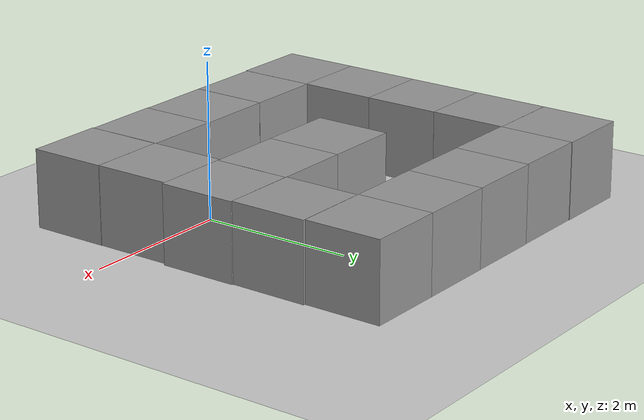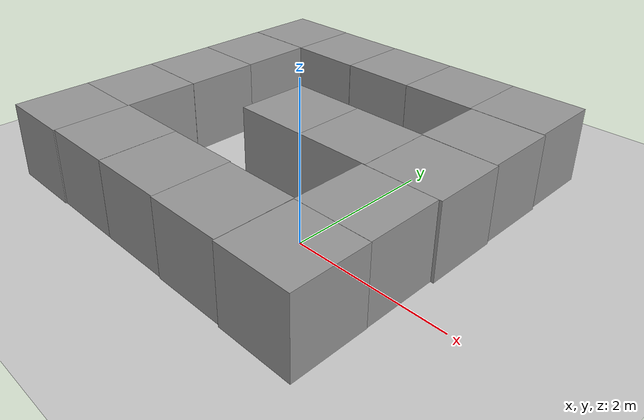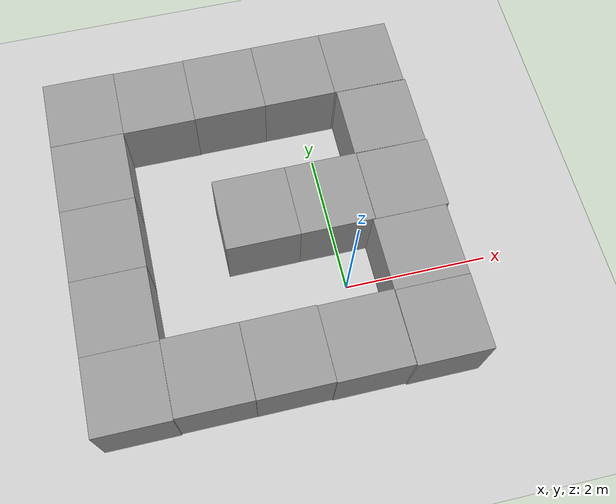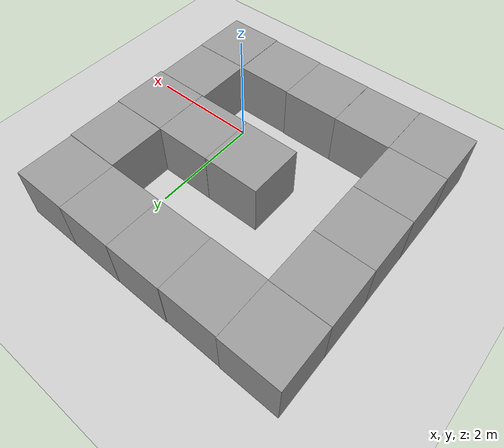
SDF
<sdf version="1.10">
 <world name="default">
  <light name="sun" type="directional">
   <pose>0 0 10 0 -0 0</pose>
   <diffuse>0.8 0.8 0.8 1</diffuse>
   <specular>0.2 0.2 0.2 1</specular>
   <attenuation>
    <range>1000</range>
    <constant>0.9</constant>
    <linear>0.01</linear>
    <quadratic>0.001</quadratic>
   </attenuation>
   <direction>-0.5 0.1 -0.9</direction>
   <spot><inner_angle>0</inner_angle><outer_angle>0</outer_angle><falloff>0</falloff></spot>
  </light>
  <model name="ground_plane">
   <static>1</static>
   <link name="link">
    <collision name="collision">
     <geometry><plane><normal>0 0 1</normal><size>100 100</size></plane></geometry>
     <surface>
      <contact><collide_bitmask>65535</collide_bitmask></contact>
      <friction><ode><mu>100</mu><mu2>50</mu2></ode></friction>
     </surface>
    </collision>
    <visual name="visual">
     <cast_shadows>0</cast_shadows>
     <geometry><plane><normal>0 0 1</normal><size>100 100</size></plane></geometry>
     <material>
      <script><uri>file://media/materials/scripts/gazebo.material</uri><name>Gazebo/Grey</name></script>
     </material>
    </visual>
   </link>
  </model>
  <gravity>0 0 -9.8</gravity>
  <magnetic_field>6e-06 2.3e-05 -4.2e-05</magnetic_field>
  <atmosphere type="adiabatic"/>
  <physics type="ode">
   <max_step_size>0.001</max_step_size>
   <real_time_factor>1</real_time_factor>
   <real_time_update_rate>1000</real_time_update_rate>
  </physics>
  <scene><ambient>0.4 0.4 0.4 1</ambient><background>0.7 0.7 0.7 1</background><shadows>1</shadows></scene>
  <audio><device>default</device></audio>
  <spherical_coordinates>
   <surface_model>EARTH_WGS84</surface_model>
   <latitude_deg>0</latitude_deg>
   <longitude_deg>0</longitude_deg>
   <elevation>0</elevation>
   <heading_deg>0</heading_deg>
  </spherical_coordinates>
  <model name="unit_box">
   <static>1</static>
   <pose>-0.075869 -0.976087 0.499995 1e-05 -0 0.005135</pose>
   <link name="link">
    <inertial>
     <mass>100</mass>
     <inertia>
      <ixx>0.166667</ixx>
      <ixy>0</ixy>
      <ixz>0</ixz>
      <iyy>0.166667</iyy>
      <iyz>0</iyz>
      <izz>0.166667</izz>
     </inertia>
    </inertial>
    <collision name="collision"><geometry><box><size>1 1 1</size></box></geometry></collision>
    <visual name="visual">
     <geometry><box><size>1 1 1</size></box></geometry>
     <material>
      <script><name>Gazebo/Grey</name><uri>file://media/materials/scripts/gazebo.material</uri></script>
     </material>
    </visual>
   </link>
  </model>
  <model name="unit_box_clone">
   <static>1</static>
   <pose>-1.07608 -0.970528 0.499995 0 1e-05 0.004946</pose>
   <link name="link">
    <inertial>
     <mass>100</mass>
     <inertia>
      <ixx>0.166667</ixx>
      <ixy>0</ixy>
      <ixz>0</ixz>
      <iyy>0.166667</iyy>
      <iyz>0</iyz>
      <izz>0.166667</izz>
     </inertia>
    </inertial>
    <collision name="collision"><geometry><box><size>1 1 1</size></box></geometry></collision>
    <visual name="visual">
     <geometry><box><size>1 1 1</size></box></geometry>
     <material>
      <script><name>Gazebo/Grey</name><uri>file://media/materials/scripts/gazebo.material</uri></script>
     </material>
    </visual>
   </link>
  </model>
  <model name="unit_box_clone_0">
   <static>1</static>
   <pose>-2.07747 -0.971909 0.499995 1e-05 -0 0.002351</pose>
   <link name="link">
    <inertial>
     <mass>100</mass>
     <inertia>
      <ixx>0.166667</ixx>
      <ixy>0</ixy>
      <ixz>0</ixz>
      <iyy>0.166667</iyy>
      <iyz>0</iyz>
      <izz>0.166667</izz>
     </inertia>
    </inertial>
    <collision name="collision"><geometry><box><size>1 1 1</size></box></geometry></collision>
    <visual name="visual">
     <geometry><box><size>1 1 1</size></box></geometry>
     <material>
      <script><name>Gazebo/Grey</name><uri>file://media/materials/scripts/gazebo.material</uri></script>
     </material>
    </visual>
   </link>
  </model>
  <model name="unit_box_clone_1">
   <static>1</static>
   <pose>0.927975 -0.989789 0.499995 -0 -1e-05 0.002705</pose>
   <link name="link">
    <inertial>
     <mass>100</mass>
     <inertia>
      <ixx>0.166667</ixx>
      <ixy>0</ixy>
      <ixz>0</ixz>
      <iyy>0.166667</iyy>
      <iyz>0</iyz>
      <izz>0.166667</izz>
     </inertia>
    </inertial>
    <collision name="collision"><geometry><box><size>1 1 1</size></box></geometry></collision>
    <visual name="visual">
     <geometry><box><size>1 1 1</size></box></geometry>
     <material>
      <script><name>Gazebo/Grey</name><uri>file://media/materials/scripts/gazebo.material</uri></script>
     </material>
    </visual>
   </link>
  </model>
  <model name="unit_box_clone_2">
   <static>1</static>
   <pose>0.919769 0.010738 0.499995 0 1e-05 0.003784</pose>
   <link name="link">
    <inertial>
     <mass>100</mass>
     <inertia>
      <ixx>0.166667</ixx>
      <ixy>0</ixy>
      <ixz>0</ixz>
      <iyy>0.166667</iyy>
      <iyz>0</iyz>
      <izz>0.166667</izz>
     </inertia>
    </inertial>
    <collision name="collision"><geometry><box><size>1 1 1</size></box></geometry></collision>
    <visual name="visual">
     <geometry><box><size>1 1 1</size></box></geometry>
     <material>
      <script><name>Gazebo/Grey</name><uri>file://media/materials/scripts/gazebo.material</uri></script>
     </material>
    </visual>
   </link>
  </model>
  <model name="unit_box_clone_3">
   <static>1</static>
   <pose>0.955318 1.01154 0.499995 0 1e-05 0.002395</pose>
   <link name="link">
    <inertial>
     <mass>100</mass>
     <inertia>
      <ixx>0.166667</ixx>
      <ixy>0</ixy>
      <ixz>0</ixz>
      <iyy>0.166667</iyy>
      <iyz>0</iyz>
      <izz>0.166667</izz>
     </inertia>
    </inertial>
    <collision name="collision"><geometry><box><size>1 1 1</size></box></geometry></collision>
    <visual name="visual">
     <geometry><box><size>1 1 1</size></box></geometry>
     <material>
      <script><name>Gazebo/Grey</name><uri>file://media/materials/scripts/gazebo.material</uri></script>
     </material>
    </visual>
   </link>
  </model>
  <model name="unit_box_clone_4">
   <static>1</static>
   <pose>-0.045623 1.01469 0.499995 -1e-05 -0 0.000554</pose>
   <link name="link">
    <inertial>
     <mass>100</mass>
     <inertia>
      <ixx>0.166667</ixx>
      <ixy>0</ixy>
      <ixz>0</ixz>
      <iyy>0.166667</iyy>
      <iyz>0</iyz>
      <izz>0.166667</izz>
     </inertia>
    </inertial>
    <collision name="collision"><geometry><box><size>1 1 1</size></box></geometry></collision>
    <visual name="visual">
     <geometry><box><size>1 1 1</size></box></geometry>
     <material>
      <script><name>Gazebo/Grey</name><uri>file://media/materials/scripts/gazebo.material</uri></script>
     </material>
    </visual>
   </link>
  </model>
  <model name="unit_box_clone_5">
   <static>1</static>
   <pose>-1.04562 1.01285 0.499995 1e-05 -0 0.000555</pose>
   <link name="link">
    <inertial>
     <mass>100</mass>
     <inertia>
      <ixx>0.166667</ixx>
      <ixy>0</ixy>
      <ixz>0</ixz>
      <iyy>0.166667</iyy>
      <iyz>0</iyz>
      <izz>0.166667</izz>
     </inertia>
    </inertial>
    <collision name="collision"><geometry><box><size>1 1 1</size></box></geometry></collision>
    <visual name="visual">
     <geometry><box><size>1 1 1</size></box></geometry>
     <material>
      <script><name>Gazebo/Grey</name><uri>file://media/materials/scripts/gazebo.material</uri></script>
     </material>
    </visual>
   </link>
  </model>
  <model name="unit_box_clone_6">
   <static>1</static>
   <pose>-3.07828 -0.987395 0.499995 1e-05 -0 0.001677</pose>
   <link name="link">
    <inertial>
     <mass>100</mass>
     <inertia>
      <ixx>0.166667</ixx>
      <ixy>0</ixy>
      <ixz>0</ixz>
      <iyy>0.166667</iyy>
      <iyz>0</iyz>
      <izz>0.166667</izz>
     </inertia>
    </inertial>
    <collision name="collision"><geometry><box><size>1 1 1</size></box></geometry></collision>
    <visual name="visual">
     <geometry><box><size>1 1 1</size></box></geometry>
     <material>
      <script><name>Gazebo/Grey</name><uri>file://media/materials/scripts/gazebo.material</uri></script>
     </material>
    </visual>
   </link>
  </model>
  <model name="unit_box_clone_7">
   <static>1</static>
   <pose>-3.07977 0.012658 0.499995 0 -1e-05 0.001737</pose>
   <link name="link">
    <inertial>
     <mass>100</mass>
     <inertia>
      <ixx>0.166667</ixx>
      <ixy>0</ixy>
      <ixz>0</ixz>
      <iyy>0.166667</iyy>
      <iyz>0</iyz>
      <izz>0.166667</izz>
     </inertia>
    </inertial>
    <collision name="collision"><geometry><box><size>1 1 1</size></box></geometry></collision>
    <visual name="visual">
     <geometry><box><size>1 1 1</size></box></geometry>
     <material>
      <script><name>Gazebo/Grey</name><uri>file://media/materials/scripts/gazebo.material</uri></script>
     </material>
    </visual>
   </link>
  </model>
  <model name="unit_box_clone_8">
   <static>1</static>
   <pose>-3.07981 1.01294 0.499995 1e-05 -0 0.002285</pose>
   <link name="link">
    <inertial>
     <mass>100</mass>
     <inertia>
      <ixx>0.166667</ixx>
      <ixy>0</ixy>
      <ixz>0</ixz>
      <iyy>0.166667</iyy>
      <iyz>0</iyz>
      <izz>0.166667</izz>
     </inertia>
    </inertial>
    <collision name="collision"><geometry><box><size>1 1 1</size></box></geometry></collision>
    <visual name="visual">
     <geometry><box><size>1 1 1</size></box></geometry>
     <material>
      <script><name>Gazebo/Grey</name><uri>file://media/materials/scripts/gazebo.material</uri></script>
     </material>
    </visual>
   </link>
  </model>
  <model name="unit_box_clone_9">
   <static>1</static>
   <pose>-3.0837 2.01298 0.499995 -0 -1e-05 0.002338</pose>
   <link name="link">
    <inertial>
     <mass>100</mass>
     <inertia>
      <ixx>0.166667</ixx>
      <ixy>0</ixy>
      <ixz>0</ixz>
      <iyy>0.166667</iyy>
      <iyz>0</iyz>
      <izz>0.166667</izz>
     </inertia>
    </inertial>
    <collision name="collision"><geometry><box><size>1 1 1</size></box></geometry></collision>
    <visual name="visual">
     <geometry><box><size>1 1 1</size></box></geometry>
     <material>
      <script><name>Gazebo/Grey</name><uri>file://media/materials/scripts/gazebo.material</uri></script>
     </material>
    </visual>
   </link>
  </model>
  <model name="unit_box_clone_10">
   <static>1</static>
   <pose>-3.08531 3.01391 0.5 0 -0 0.000938</pose>
   <link name="link">
    <inertial>
     <mass>100</mass>
     <inertia>
      <ixx>0.166667</ixx>
      <ixy>0</ixy>
      <ixz>0</ixz>
      <iyy>0.166667</iyy>
      <iyz>0</iyz>
      <izz>0.166667</izz>
     </inertia>
    </inertial>
    <collision name="collision"><geometry><box><size>1 1 1</size></box></geometry></collision>
    <visual name="visual">
     <geometry><box><size>1 1 1</size></box></geometry>
     <material>
      <script><name>Gazebo/Grey</name><uri>file://media/materials/scripts/gazebo.material</uri></script>
     </material>
    </visual>
   </link>
  </model>
  <model name="unit_box_clone_11">
   <static>1</static>
   <pose>-2.08518 3.0078 0.499995 -1e-05 -0 0.000689</pose>
   <link name="link">
    <inertial>
     <mass>100</mass>
     <inertia>
      <ixx>0.166667</ixx>
      <ixy>0</ixy>
      <ixz>0</ixz>
      <iyy>0.166667</iyy>
      <iyz>0</iyz>
      <izz>0.166667</izz>
     </inertia>
    </inertial>
    <collision name="collision"><geometry><box><size>1 1 1</size></box></geometry></collision>
    <visual name="visual">
     <geometry><box><size>1 1 1</size></box></geometry>
     <material>
      <script><name>Gazebo/Grey</name><uri>file://media/materials/scripts/gazebo.material</uri></script>
     </material>
    </visual>
   </link>
  </model>
  <model name="unit_box_clone_12">
   <static>1</static>
   <pose>-1.08518 3.01359 0.5 0 -0 0.000686</pose>
   <link name="link">
    <inertial>
     <mass>100</mass>
     <inertia>
      <ixx>0.166667</ixx>
      <ixy>0</ixy>
      <ixz>0</ixz>
      <iyy>0.166667</iyy>
      <iyz>0</iyz>
      <izz>0.166667</izz>
     </inertia>
    </inertial>
    <collision name="collision"><geometry><box><size>1 1 1</size></box></geometry></collision>
    <visual name="visual">
     <geometry><box><size>1 1 1</size></box></geometry>
     <material>
      <script><name>Gazebo/Grey</name><uri>file://media/materials/scripts/gazebo.material</uri></script>
     </material>
    </visual>
   </link>
  </model>
  <model name="unit_box_clone_13">
   <static>1</static>
   <pose>-0.085173 3.01647 0.499995 -1e-05 -0 0.000678</pose>
   <link name="link">
    <inertial>
     <mass>100</mass>
     <inertia>
      <ixx>0.166667</ixx>
      <ixy>0</ixy>
      <ixz>0</ixz>
      <iyy>0.166667</iyy>
      <iyz>0</iyz>
      <izz>0.166667</izz>
     </inertia>
    </inertial>
    <collision name="collision"><geometry><box><size>1 1 1</size></box></geometry></collision>
    <visual name="visual">
     <geometry><box><size>1 1 1</size></box></geometry>
     <material>
      <script><name>Gazebo/Grey</name><uri>file://media/materials/scripts/gazebo.material</uri></script>
     </material>
    </visual>
   </link>
  </model>
  <model name="unit_box_clone_14">
   <static>1</static>
   <pose>0.914872 3.01731 0.5 0 -0 0.000597</pose>
   <link name="link">
    <inertial>
     <mass>100</mass>
     <inertia>
      <ixx>0.166667</ixx>
      <ixy>0</ixy>
      <ixz>0</ixz>
      <iyy>0.166667</iyy>
      <iyz>0</iyz>
      <izz>0.166667</izz>
     </inertia>
    </inertial>
    <collision name="collision"><geometry><box><size>1 1 1</size></box></geometry></collision>
    <visual name="visual">
     <geometry><box><size>1 1 1</size></box></geometry>
     <material>
      <script><name>Gazebo/Grey</name><uri>file://media/materials/scripts/gazebo.material</uri></script>
     </material>
    </visual>
   </link>
  </model>
  <model name="unit_box_clone_15">
   <static>1</static>
   <pose>0.937075 2.014 0.499995 0 -1e-05 -0.002008</pose>
   <link name="link">
    <inertial>
     <mass>100</mass>
     <inertia>
      <ixx>0.166667</ixx>
      <ixy>0</ixy>
      <ixz>0</ixz>
      <iyy>0.166667</iyy>
      <iyz>0</iyz>
      <izz>0.166667</izz>
     </inertia>
    </inertial>
    <collision name="collision"><geometry><box><size>1 1 1</size></box></geometry></collision>
    <visual name="visual">
     <geometry><box><size>1 1 1</size></box></geometry>
     <material>
      <script><name>Gazebo/Grey</name><uri>file://media/materials/scripts/gazebo.material</uri></script>
     </material>
    </visual>
   </link>
  </model>
 </world>
</sdf>
